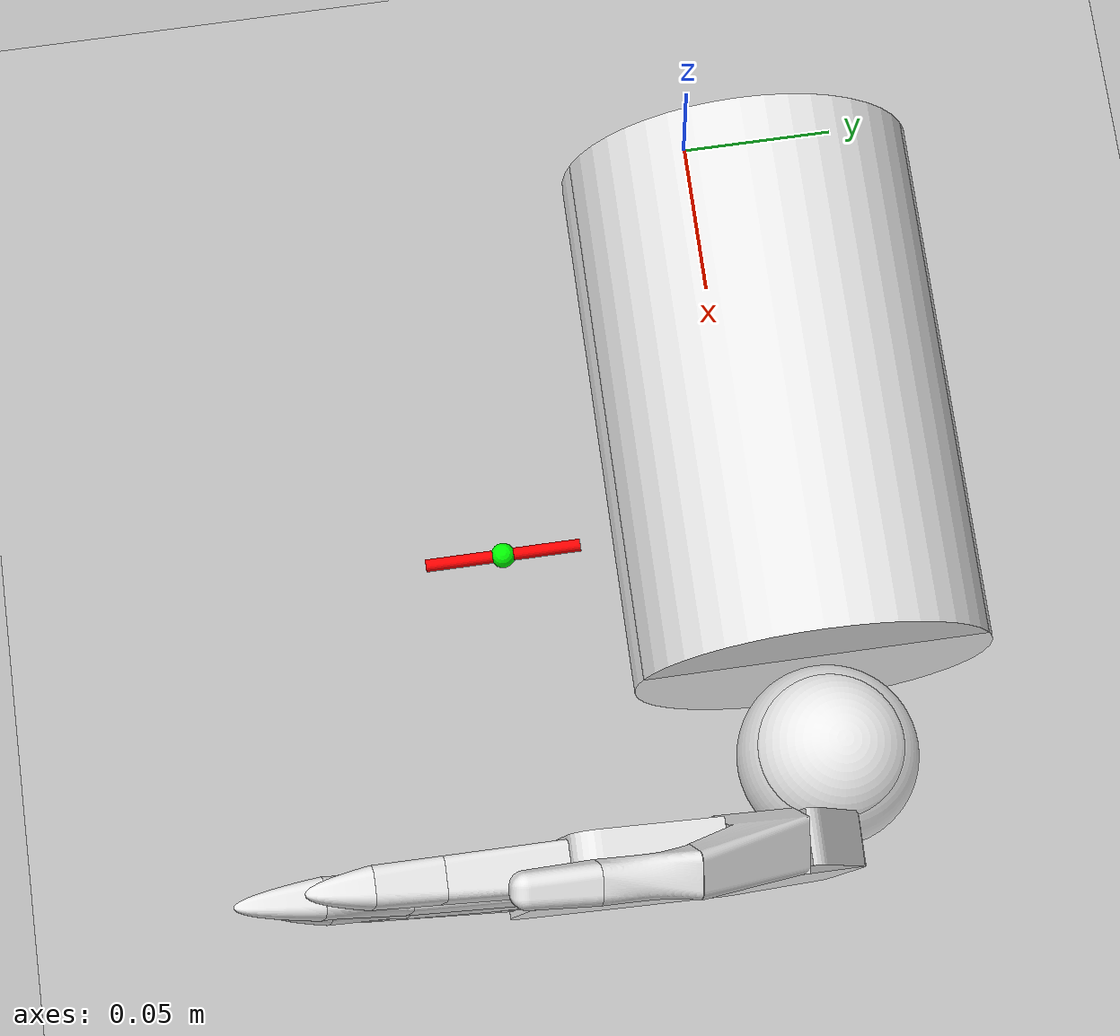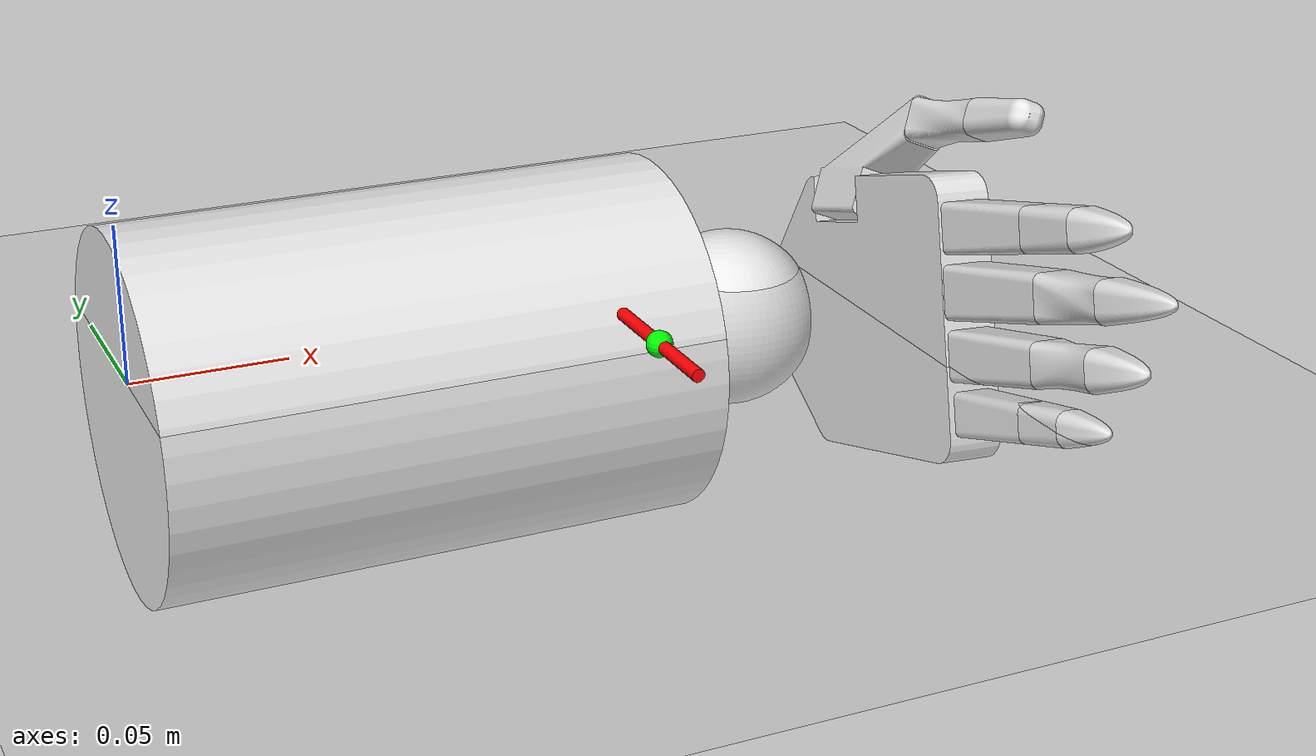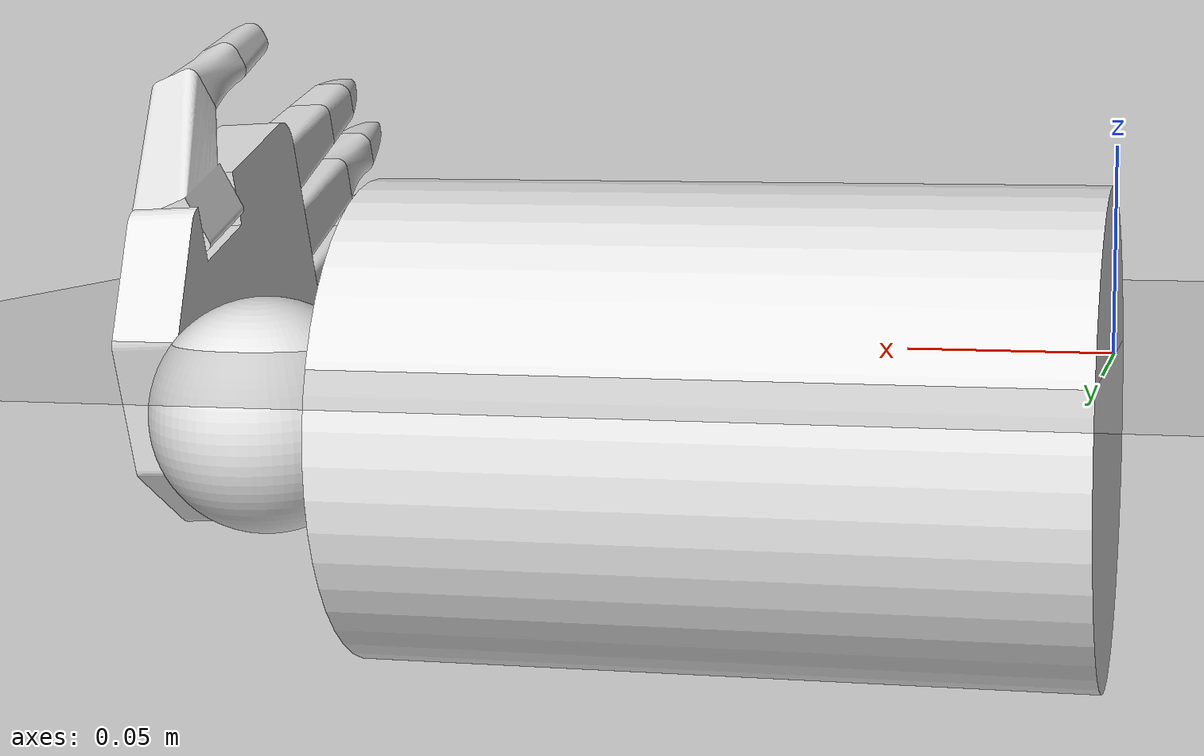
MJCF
<mujoco model="Hand_forearm">
  <compiler angle="radian" autolimits="true" meshdir="assets" />
  <option gravity="0 0 -9.81" />
  <default>
    <geom contype="2" conaffinity="1" />
  </default>
  <asset>
    <mesh name="fore_arm_1_0" file="fore_arm_1_0.stl" />
    <mesh name="wrist_1_1" file="wrist_1_1.stl" />
    <mesh name="human_hand_v3__Palm_1_2" file="human_hand_v3__Palm_1_2.stl" />
    <mesh name="fore_arm_1_3" file="fore_arm_1_3.stl" />
    <mesh name="wrist_1_4" file="wrist_1_4.stl" />
    <mesh name="human_hand_v3__Palm_1_5" file="human_hand_v3__Palm_1_5.stl" />
    <mesh name="Thumb_finger__Thumb_Base_1_6" file="Thumb_finger__Thumb_Base_1_6.stl" />
    <mesh name="Thumb_finger__Thumb_Base_1_7" file="Thumb_finger__Thumb_Base_1_7.stl" />
    <mesh name="Thumb_finger__Thumb_Proximal_1_8" file="Thumb_finger__Thumb_Proximal_1_8.stl" />
    <mesh name="Thumb_finger__Thumb_Proximal_1_9" file="Thumb_finger__Thumb_Proximal_1_9.stl" />
    <mesh name="Thumb_finger__Thumb_Distal_v2_1_10" file="Thumb_finger__Thumb_Distal_v2_1_10.stl" />
    <mesh name="Thumb_finger__Thumb_Distal_v2_1_11" file="Thumb_finger__Thumb_Distal_v2_1_11.stl" />
    <mesh name="Middle_Finger__Middle_Proximal_5_12" file="Middle_Finger__Middle_Proximal_5_12.stl" />
    <mesh name="Middle_Finger__Middle_Proximal_5_13" file="Middle_Finger__Middle_Proximal_5_13.stl" />
    <mesh name="Middle_Finger__Middle_Middle_4_14" file="Middle_Finger__Middle_Middle_4_14.stl" />
    <mesh name="Middle_Finger__Middle_Middle_4_15" file="Middle_Finger__Middle_Middle_4_15.stl" />
    <mesh name="Middle_Finger__Middle_Distal_4_16" file="Middle_Finger__Middle_Distal_4_16.stl" />
    <mesh name="Middle_Finger__Middle_Distal_4_17" file="Middle_Finger__Middle_Distal_4_17.stl" />
    <mesh name="index_assem__Index_Proximal_1_18" file="index_assem__Index_Proximal_1_18.stl" />
    <mesh name="index_assem__Index_Proximal_1_19" file="index_assem__Index_Proximal_1_19.stl" />
    <mesh name="index_assem__Index_Middle_1_20" file="index_assem__Index_Middle_1_20.stl" />
    <mesh name="index_assem__Index_Middle_1_21" file="index_assem__Index_Middle_1_21.stl" />
    <mesh name="index_assem__Index_Distal_1_22" file="index_assem__Index_Distal_1_22.stl" />
    <mesh name="index_assem__Index_Distal_1_23" file="index_assem__Index_Distal_1_23.stl" />
    <mesh name="Pinky_finger__Pinky_Proximal_1_24" file="Pinky_finger__Pinky_Proximal_1_24.stl" />
    <mesh name="Pinky_finger__Pinky_Proximal_1_25" file="Pinky_finger__Pinky_Proximal_1_25.stl" />
    <mesh name="Pinky_finger__Pinky_Middle_1_26" file="Pinky_finger__Pinky_Middle_1_26.stl" />
    <mesh name="Pinky_finger__Pinky_Middle_1_27" file="Pinky_finger__Pinky_Middle_1_27.stl" />
    <mesh name="Pinky_finger__Pinky_Distal_1_28" file="Pinky_finger__Pinky_Distal_1_28.stl" />
    <mesh name="Pinky_finger__Pinky_Distal_1_29" file="Pinky_finger__Pinky_Distal_1_29.stl" />
    <mesh name="Ring_finger__Ring_Proximal_1_30" file="Ring_finger__Ring_Proximal_1_30.stl" />
    <mesh name="Ring_finger__Ring_Proximal_1_31" file="Ring_finger__Ring_Proximal_1_31.stl" />
    <mesh name="Ring_finger__Ring_Middle_1_32" file="Ring_finger__Ring_Middle_1_32.stl" />
    <mesh name="Ring_finger__Ring_Middle_1_33" file="Ring_finger__Ring_Middle_1_33.stl" />
    <mesh name="Ring_finger__Ring_Distal_1_34" file="Ring_finger__Ring_Distal_1_34.stl" />
    <mesh name="Ring_finger__Ring_Distal_1_35" file="Ring_finger__Ring_Distal_1_35.stl" />
  </asset>
  <worldbody>
    <light pos="0 0 3" dir="0 0 -1" directional="true" />
    <geom name="ground" type="plane" size="5 5 0.1" contype="1" conaffinity="1" rgba="0.8 0.8 0.8 1" />
    <body name="base_link" pos="0 0 0">
      <inertial pos="0.105525177 0.0139732161 -0.017643717" mass="2.295572" diaginertia="0.0041793389 0.0120098631 0.0123199477" quat="0.988961157 -0.129704892 -0.0102235606 -0.0709080342" />
      <geom pos="0 0 0" quat="1 0 0 0" group="2" contype="0" conaffinity="0" type="mesh" mesh="fore_arm_1_0" rgba="0.894117647 0.894117647 0.894117647 1" name="base_link_visual0" />
      <geom pos="0 0 0" quat="1 0 0 0" group="2" contype="0" conaffinity="0" type="mesh" mesh="wrist_1_1" rgba="0.894117647 0.894117647 0.894117647 1" name="base_link_visual1" />
      <geom pos="0 0 0" quat="1 0 0 0" group="2" contype="0" conaffinity="0" type="mesh" mesh="human_hand_v3__Palm_1_2" rgba="0.894117647 0.894117647 0.894117647 1" name="base_link_visual2" />
      <geom pos="0 0 0" quat="1 0 0 0" group="3" type="mesh" mesh="fore_arm_1_3" rgba="0.4 0.4 0.4 1" name="base_link_collision0" />
      <geom pos="0 0 0" quat="1 0 0 0" group="3" type="mesh" mesh="wrist_1_4" rgba="0.4 0.4 0.4 1" name="base_link_collision1" />
      <geom pos="0 0 0" quat="1 0 0 0" group="3" type="mesh" mesh="human_hand_v3__Palm_1_5" rgba="0.4 0.4 0.4 1" name="base_link_collision2" />
      <site name="wrist_zero" pos="0.137372784 -0.0793053366 0.0205328921" type="sphere" size="0.004" rgba="0 1 0 1" />
      <site name="wrist_axis" pos="0.137372784 -0.0793053366 0.0205328921" type="cylinder" size="0.002 0.025"
            zaxis="0 1 0" rgba="1 0 0 1" />
      <body name="human_hand_v3_2__Thumb_finger_1__Thumb_Base_1" pos="0.248668957 0.00555147208 0.0397444398" quat="0.707105483 -1.29847569e-06 -1.29872752e-06 -0.70710808">
        <joint name="human_hand_v3_2__Palm_1__human_hand_v3_2__Thumb_finger_1__Thumb_Base_1" pos="0 0 0" axis="0 0 1" type="hinge" range="-3.14159 3.14159" damping="3.18471338" />
        <inertial pos="0.0218974991 -0.00306463948 -0.00115935533" mass="0.0146302" diaginertia="8.05767783e-07 3.18179553e-06 3.27284669e-06" quat="0.809428233 0.555708661 0.0570048579 -0.181009019" />
        <geom pos="0 0 0" quat="1 0 0 0" group="2" contype="0" conaffinity="0" type="mesh" mesh="Thumb_finger__Thumb_Base_1_6" rgba="0.894117647 0.894117647 0.894117647 1" name="human_hand_v3_2__Thumb_finger_1__Thumb_Base_1_visual0" />
        <geom pos="0 0 0" quat="1 0 0 0" group="3" type="mesh" mesh="Thumb_finger__Thumb_Base_1_7" rgba="0.4 0.4 0.4 1" name="human_hand_v3_2__Thumb_finger_1__Thumb_Base_1_collision0" />
        <body name="human_hand_v3_2__Thumb_finger_1__Thumb_Proximal_1" pos="0.0401273979 0.00345031264 0.0200720522" quat="1 0 0 0">
          <joint name="human_hand_v3_2__Thumb_finger_1__Thumb_Base_1__human_hand_v3_2__Thumb_finger_1__Thumb_Proximal_1" pos="0 0 0" axis="-0.27777332 0.39123503 0.87736944" type="hinge" range="-3.14159 3.14159" damping="3.18471338" />
          <inertial pos="0.0138440334 0.000128672747 0.00432561419" mass="0.00482838" diaginertia="1.2299212e-07 4.55144632e-07 4.64430248e-07" quat="0.967023708 -0.20516478 -0.148485968 -0.0269161264" />
          <geom pos="0 0 0" quat="1 0 0 0" group="2" contype="0" conaffinity="0" type="mesh" mesh="Thumb_finger__Thumb_Proximal_1_8" rgba="0.894117647 0.894117647 0.894117647 1" name="human_hand_v3_2__Thumb_finger_1__Thumb_Proximal_1_visual0" />
          <geom pos="0 0 0" quat="1 0 0 0" group="3" type="mesh" mesh="Thumb_finger__Thumb_Proximal_1_9" rgba="0.4 0.4 0.4 1" name="human_hand_v3_2__Thumb_finger_1__Thumb_Proximal_1_collision0" />
          <body name="human_hand_v3_2__Thumb_finger_1__Thumb_Distal_v2_1" pos="0.0295881081 0.000275005258 0.00924490287" quat="1 0 0 0">
            <joint name="human_hand_v3_2__Thumb_finger_1__Thumb_Proximal_1__human_hand_v3_2__Thumb_finger_1__Thumb_Distal_v2_1" pos="0 0 0" axis="0 0 1" type="hinge" range="-3.14159 3.14159" damping="3.18471338" />
            <inertial pos="0.0114792943 0.000106693714 0.0035867437" mass="0.00306267" diaginertia="5.86965015e-08 1.9395811e-07 1.98802088e-07" quat="0.968510695 -0.198026348 -0.148680594 -0.0258201649" />
            <geom pos="0 0 0" quat="1 0 0 0" group="2" contype="0" conaffinity="0" type="mesh" mesh="Thumb_finger__Thumb_Distal_v2_1_10" rgba="0.894117647 0.894117647 0.894117647 1" name="human_hand_v3_2__Thumb_finger_1__Thumb_Distal_v2_1_visual0" />
            <geom pos="0 0 0" quat="1 0 0 0" group="3" type="mesh" mesh="Thumb_finger__Thumb_Distal_v2_1_11" rgba="0.4 0.4 0.4 1" name="human_hand_v3_2__Thumb_finger_1__Thumb_Distal_v2_1_collision0" />
          </body>
        </body>
      </body>
      <body name="human_hand_v3_2__Middle_Finger_1__Middle_Proximal_5" pos="0.241372784 -0.0793053366 0.0205328921" quat="0.707105483 -1.29847569e-06 -1.29872752e-06 -0.70710808">
        <joint name="human_hand_v3_2__Palm_1__human_hand_v3_2__Middle_Finger_1__Middle_Proximal_5" pos="0 0 0" axis="0.29826476 -0.0528972999 -0.953016269" type="hinge" range="-3.14159 3.14159" damping="3.18471338" />
        <inertial pos="0.0205009996 0.00019055288 0.0064056048" mass="0.0112897" diaginertia="4.68645639e-07 2.12933064e-06 2.12933572e-06" quat="0.987242423 0.0507943269 -0.150408517 0.0122316604" />
        <geom pos="0 0 0" quat="1 0 0 0" group="2" contype="0" conaffinity="0" type="mesh" mesh="Middle_Finger__Middle_Proximal_5_12" rgba="0.894117647 0.894117647 0.894117647 1" name="human_hand_v3_2__Middle_Finger_1__Middle_Proximal_5_visual0" />
        <geom pos="0 0 0" quat="1 0 0 0" group="3" type="mesh" mesh="Middle_Finger__Middle_Proximal_5_13" rgba="0.4 0.4 0.4 1" name="human_hand_v3_2__Middle_Finger_1__Middle_Proximal_5_collision0" />
        <body name="human_hand_v3_2__Middle_Finger_1__Middle_Middle_4" pos="0.0429504795 0.000399201182 0.0134200203" quat="1 0 0 0">
          <joint name="human_hand_v3_2__Middle_Finger_1__Middle_Proximal_5__human_hand_v3_2__Middle_Finger_1__Middle_Middle_4" pos="0 0 0" axis="-0.00732084002 -0.998560553 0.0531340502" type="hinge" range="-3.14159 3.14159" damping="3.18471338" />
          <inertial pos="0.0120972882 0.000112438004 0.00377983783" mass="0.00456309" diaginertia="1.25674557e-07 3.48268512e-07 3.48269931e-07" quat="0.988044991 -0.0315377657 -0.15090513 -0.00032756301" />
          <geom pos="0 0 0" quat="1 0 0 0" group="2" contype="0" conaffinity="0" type="mesh" mesh="Middle_Finger__Middle_Middle_4_14" rgba="0.894117647 0.894117647 0.894117647 1" name="human_hand_v3_2__Middle_Finger_1__Middle_Middle_4_visual0" />
          <geom pos="0 0 0" quat="1 0 0 0" group="3" type="mesh" mesh="Middle_Finger__Middle_Middle_4_15" rgba="0.4 0.4 0.4 1" name="human_hand_v3_2__Middle_Finger_1__Middle_Middle_4_collision0" />
          <body name="human_hand_v3_2__Middle_Finger_1__Middle_Distal_4" pos="0.0257702877 0.000239520709 0.00805201218" quat="1 0 0 0">
            <joint name="human_hand_v3_2__Middle_Finger_1__Middle_Middle_4__human_hand_v3_2__Middle_Finger_1__Middle_Distal_4" pos="0 0 0" axis="0.00732084002 0.998560553 -0.0531340502" type="hinge" range="-3.14159 3.14159" damping="3.18471338" />
            <inertial pos="0.00858968737 7.99323513e-05 0.00268420822" mass="0.00209578" diaginertia="3.49257993e-08 1.02342833e-07 1.02343467e-07" quat="0.49393156 0.856306379 -0.0714771637 0.132898511" />
            <geom pos="0 0 0" quat="1 0 0 0" group="2" contype="0" conaffinity="0" type="mesh" mesh="Middle_Finger__Middle_Distal_4_16" rgba="0.894117647 0.894117647 0.894117647 1" name="human_hand_v3_2__Middle_Finger_1__Middle_Distal_4_visual0" />
            <geom pos="0 0 0" quat="1 0 0 0" group="3" type="mesh" mesh="Middle_Finger__Middle_Distal_4_17" rgba="0.4 0.4 0.4 1" name="human_hand_v3_2__Middle_Finger_1__Middle_Distal_4_collision0" />
          </body>
        </body>
      </body>
      <body name="human_hand_v3_2__index_assem_2__Index_Proximal_1" pos="0.242404303 -0.0734891093 0.039116688" quat="0.707105483 -1.29847569e-06 -1.29872752e-06 -0.70710808">
        <joint name="human_hand_v3_2__Palm_1__human_hand_v3_2__index_assem_2__Index_Proximal_1" pos="0 0 0" axis="0.29826476 -0.0528972999 -0.953016269" type="hinge" range="-3.14159 3.14159" damping="3.18471338" />
        <inertial pos="0.0177049315 0.000164564067 0.00553196471" mass="0.00857536" diaginertia="3.11850846e-07 1.23617272e-06 1.23617643e-06" quat="0.987713119 -0.0406248314 -0.150895576 -0.0017154448" />
        <geom pos="0 0 0" quat="1 0 0 0" group="2" contype="0" conaffinity="0" type="mesh" mesh="index_assem__Index_Proximal_1_18" rgba="0.894117647 0.894117647 0.894117647 1" name="human_hand_v3_2__index_assem_2__Index_Proximal_1_visual0" />
        <geom pos="0 0 0" quat="1 0 0 0" group="3" type="mesh" mesh="index_assem__Index_Proximal_1_19" rgba="0.4 0.4 0.4 1" name="human_hand_v3_2__index_assem_2__Index_Proximal_1_collision0" />
        <body name="human_hand_v3_2__index_assem_2__Index_Middle_1" pos="0.0372237489 0.000345974357 0.0116306843" quat="1 0 0 0">
          <joint name="human_hand_v3_2__index_assem_2__Index_Proximal_1__human_hand_v3_2__index_assem_2__Index_Middle_1" pos="0 0 0" axis="-0.29826476 0.0528972999 0.953016269" type="hinge" range="-3.14159 3.14159" damping="3.18471338" />
          <inertial pos="0.0101627499 9.44571939e-05 0.00317538504" mass="0.0037779" diaginertia="1.05472899e-07 2.04658801e-07 2.046593e-07" quat="0.987416705 -0.0472848659 -0.150880488 -0.00273319961" />
          <geom pos="0 0 0" quat="1 0 0 0" group="2" contype="0" conaffinity="0" type="mesh" mesh="index_assem__Index_Middle_1_20" rgba="0.894117647 0.894117647 0.894117647 1" name="human_hand_v3_2__index_assem_2__Index_Middle_1_visual0" />
          <geom pos="0 0 0" quat="1 0 0 0" group="3" type="mesh" mesh="index_assem__Index_Middle_1_21" rgba="0.4 0.4 0.4 1" name="human_hand_v3_2__index_assem_2__Index_Middle_1_collision0" />
          <body name="human_hand_v3_2__index_assem_2__Index_Distal_1" pos="0.0209980122 0.000195165022 0.00656089881" quat="1 0 0 0">
            <joint name="human_hand_v3_2__index_assem_2__Index_Middle_1__human_hand_v3_2__index_assem_2__Index_Distal_1" pos="0 0 0" axis="-0.29826476 0.0528972999 0.953016269" type="hinge" range="-3.14159 3.14159" damping="3.18471338" />
            <inertial pos="0.00636301403 5.88622601e-05 0.0019882563" mass="0.00155249" diaginertia="2.58713193e-08 4.74384938e-08 4.7439987e-08" quat="0.98779917 0.0384694241 -0.150550818 0.0103612081" />
            <geom pos="0 0 0" quat="1 0 0 0" group="2" contype="0" conaffinity="0" type="mesh" mesh="index_assem__Index_Distal_1_22" rgba="0.894117647 0.894117647 0.894117647 1" name="human_hand_v3_2__index_assem_2__Index_Distal_1_visual0" />
            <geom pos="0 0 0" quat="1 0 0 0" group="3" type="mesh" mesh="index_assem__Index_Distal_1_23" rgba="0.4 0.4 0.4 1" name="human_hand_v3_2__index_assem_2__Index_Distal_1_collision0" />
          </body>
        </body>
      </body>
      <body name="human_hand_v3_2__Pinky_finger_1__Pinky_Proximal_1" pos="0.239389095 -0.0904903889 -0.0152051769" quat="0.707105483 -1.29847569e-06 -1.29872752e-06 -0.70710808">
        <joint name="human_hand_v3_2__Palm_1__human_hand_v3_2__Pinky_finger_1__Pinky_Proximal_1" pos="0 0 0" axis="0 0 1" type="hinge" range="-3.14159 3.14159" damping="3.18471338" />
        <inertial pos="0.0143970815 0.00013381152 0.00449839061" mass="0.00524416" diaginertia="1.42027653e-07 5.14705317e-07 5.14709029e-07" quat="0.988168458 -0.0273987124 -0.150904991 0.000304527043" />
        <geom pos="0 0 0" quat="1 0 0 0" group="2" contype="0" conaffinity="0" type="mesh" mesh="Pinky_finger__Pinky_Proximal_1_24" rgba="0.894117647 0.894117647 0.894117647 1" name="human_hand_v3_2__Pinky_finger_1__Pinky_Proximal_1_visual0" />
        <geom pos="0 0 0" quat="1 0 0 0" group="3" type="mesh" mesh="Pinky_finger__Pinky_Proximal_1_25" rgba="0.4 0.4 0.4 1" name="human_hand_v3_2__Pinky_finger_1__Pinky_Proximal_1_collision0" />
        <body name="human_hand_v3_2__Pinky_finger_1__Pinky_Middle_1" pos="0.0305425632 0.000283876396 0.00954312554" quat="1 0 0 0">
          <joint name="human_hand_v3_2__Pinky_finger_1__Pinky_Proximal_1__human_hand_v3_2__Pinky_finger_1__Pinky_Middle_1" pos="0 0 0" axis="-0.00732084002 -0.998560553 0.0531340502" type="hinge" range="-3.14159 3.14159" damping="3.18471338" />
          <inertial pos="0.00824896004 7.66695522e-05 0.0025774151" mass="0.00219107" diaginertia="4.31909353e-08 8.04825322e-08 8.04829326e-08" quat="0.987716813 -0.0405344935 -0.150895848 -0.00170181303" />
          <geom pos="0 0 0" quat="1 0 0 0" group="2" contype="0" conaffinity="0" type="mesh" mesh="Pinky_finger__Pinky_Middle_1_26" rgba="0.894117647 0.894117647 0.894117647 1" name="human_hand_v3_2__Pinky_finger_1__Pinky_Middle_1_visual0" />
          <geom pos="0 0 0" quat="1 0 0 0" group="3" type="mesh" mesh="Pinky_finger__Pinky_Middle_1_27" rgba="0.4 0.4 0.4 1" name="human_hand_v3_2__Pinky_finger_1__Pinky_Middle_1_collision0" />
          <body name="human_hand_v3_2__Pinky_finger_1__Pinky_Distal_1" pos="0.0171801918 0.000159680473 0.00536800812" quat="1 0 0 0">
            <joint name="human_hand_v3_2__Pinky_finger_1__Pinky_Middle_1__human_hand_v3_2__Pinky_finger_1__Pinky_Distal_1" pos="0 0 0" axis="-0.00732084002 -0.998560553 0.0531340502" type="hinge" range="-3.14159 3.14159" damping="3.18471338" />
            <inertial pos="0.00572626912 5.3243237e-05 0.00178956477" mass="0.000965173" diaginertia="1.10480667e-08 2.28965246e-08 2.28980088e-08" quat="0.987850971 -0.0370901219 -0.150908585 -0.00117549651" />
            <geom pos="0 0 0" quat="1 0 0 0" group="2" contype="0" conaffinity="0" type="mesh" mesh="Pinky_finger__Pinky_Distal_1_28" rgba="0.894117647 0.894117647 0.894117647 1" name="human_hand_v3_2__Pinky_finger_1__Pinky_Distal_1_visual0" />
            <geom pos="0 0 0" quat="1 0 0 0" group="3" type="mesh" mesh="Pinky_finger__Pinky_Distal_1_29" rgba="0.4 0.4 0.4 1" name="human_hand_v3_2__Pinky_finger_1__Pinky_Distal_1_collision0" />
          </body>
        </body>
      </body>
      <body name="human_hand_v3_2__Ring_finger_1__Ring_Proximal_1" pos="0.240341266 -0.0851215638 0.00194909621" quat="0.707105483 -1.29847569e-06 -1.29872752e-06 -0.70710808">
        <joint name="human_hand_v3_2__Palm_1__human_hand_v3_2__Ring_finger_1__Ring_Proximal_1" pos="0 0 0" axis="0 0 1" type="hinge" range="-3.14159 3.14159" damping="3.18471338" />
        <inertial pos="0.018612877 0.000172996514 0.00581565553" mass="0.00901512" diaginertia="3.27843256e-07 1.41903587e-06 1.41903687e-06" quat="0.988419611 -0.0159470534 -0.150891181 0.00205306446" />
        <geom pos="0 0 0" quat="1 0 0 0" group="2" contype="0" conaffinity="0" type="mesh" mesh="Ring_finger__Ring_Proximal_1_30" rgba="0.894117647 0.894117647 0.894117647 1" name="human_hand_v3_2__Ring_finger_1__Ring_Proximal_1_visual0" />
        <geom pos="0 0 0" quat="1 0 0 0" group="3" type="mesh" mesh="Ring_finger__Ring_Proximal_1_31" rgba="0.4 0.4 0.4 1" name="human_hand_v3_2__Ring_finger_1__Ring_Proximal_1_collision0" />
        <body name="human_hand_v3_2__Ring_finger_1__Ring_Middle_1" pos="0.0391326591 0.000363716632 0.0122271296" quat="1 0 0 0">
          <joint name="human_hand_v3_2__Ring_finger_1__Ring_Proximal_1__human_hand_v3_2__Ring_finger_1__Ring_Middle_1" pos="0 0 0" axis="-0.00732084002 -0.998560553 0.0531340502" type="hinge" range="-3.14159 3.14159" damping="3.18471338" />
          <inertial pos="0.0115097173 0.000106976608 0.00359624949" mass="0.00389782" diaginertia="9.81453377e-08 2.59583693e-07 2.59583969e-07" quat="0.983231586 -0.102386469 -0.1504929 -0.0111600071" />
          <geom pos="0 0 0" quat="1 0 0 0" group="2" contype="0" conaffinity="0" type="mesh" mesh="Ring_finger__Ring_Middle_1_32" rgba="0.894117647 0.894117647 0.894117647 1" name="human_hand_v3_2__Ring_finger_1__Ring_Middle_1_visual0" />
          <geom pos="0 0 0" quat="1 0 0 0" group="3" type="mesh" mesh="Ring_finger__Ring_Middle_1_33" rgba="0.4 0.4 0.4 1" name="human_hand_v3_2__Ring_finger_1__Ring_Middle_1_collision0" />
          <body name="human_hand_v3_2__Ring_finger_1__Ring_Distal_1" pos="0.0238613775 0.000221778434 0.00745556683" quat="1 0 0 0">
            <joint name="human_hand_v3_2__Ring_finger_1__Ring_Middle_1__human_hand_v3_2__Ring_finger_1__Ring_Distal_1" pos="0 0 0" axis="-0.00732084002 -0.998560553 0.0531340502" type="hinge" range="-3.14159 3.14159" damping="3.18471338" />
            <inertial pos="0.00636307038 5.94192679e-05 0.00198805106" mass="0.00155249" diaginertia="2.58713138e-08 4.74384817e-08 4.74399045e-08" quat="0.987722906 0.0403933342 -0.150527908 0.0106390122" />
            <geom pos="0 0 0" quat="1 0 0 0" group="2" contype="0" conaffinity="0" type="mesh" mesh="Ring_finger__Ring_Distal_1_34" rgba="0.894117647 0.894117647 0.894117647 1" name="human_hand_v3_2__Ring_finger_1__Ring_Distal_1_visual0" />
            <geom pos="0 0 0" quat="1 0 0 0" group="3" type="mesh" mesh="Ring_finger__Ring_Distal_1_35" rgba="0.4 0.4 0.4 1" name="human_hand_v3_2__Ring_finger_1__Ring_Distal_1_collision0" />
          </body>
        </body>
      </body>
    </body>
  </worldbody>
  <actuator>
    <position name="human_hand_v3_2__Palm_1__human_hand_v3_2__Thumb_finger_1__Thumb_Base_1_act" joint="human_hand_v3_2__Palm_1__human_hand_v3_2__Thumb_finger_1__Thumb_Base_1" kp="50" ctrlrange="-3.14159 3.14159" forcerange="-10 10" />
    <position name="human_hand_v3_2__Thumb_finger_1__Thumb_Base_1__human_hand_v3_2__Thumb_finger_1__Thumb_Proximal_1_act" joint="human_hand_v3_2__Thumb_finger_1__Thumb_Base_1__human_hand_v3_2__Thumb_finger_1__Thumb_Proximal_1" kp="50" ctrlrange="-3.14159 3.14159" forcerange="-10 10" />
    <position name="human_hand_v3_2__Thumb_finger_1__Thumb_Proximal_1__human_hand_v3_2__Thumb_finger_1__Thumb_Distal_v2_1_act" joint="human_hand_v3_2__Thumb_finger_1__Thumb_Proximal_1__human_hand_v3_2__Thumb_finger_1__Thumb_Distal_v2_1" kp="50" ctrlrange="-3.14159 3.14159" forcerange="-10 10" />
    <position name="human_hand_v3_2__Palm_1__human_hand_v3_2__Middle_Finger_1__Middle_Proximal_5_act" joint="human_hand_v3_2__Palm_1__human_hand_v3_2__Middle_Finger_1__Middle_Proximal_5" kp="50" ctrlrange="-3.14159 3.14159" forcerange="-10 10" />
    <position name="human_hand_v3_2__Middle_Finger_1__Middle_Proximal_5__human_hand_v3_2__Middle_Finger_1__Middle_Middle_4_act" joint="human_hand_v3_2__Middle_Finger_1__Middle_Proximal_5__human_hand_v3_2__Middle_Finger_1__Middle_Middle_4" kp="50" ctrlrange="-3.14159 3.14159" forcerange="-10 10" />
    <position name="human_hand_v3_2__Middle_Finger_1__Middle_Middle_4__human_hand_v3_2__Middle_Finger_1__Middle_Distal_4_act" joint="human_hand_v3_2__Middle_Finger_1__Middle_Middle_4__human_hand_v3_2__Middle_Finger_1__Middle_Distal_4" kp="50" ctrlrange="-3.14159 3.14159" forcerange="-10 10" />
    <position name="human_hand_v3_2__Palm_1__human_hand_v3_2__index_assem_2__Index_Proximal_1_act" joint="human_hand_v3_2__Palm_1__human_hand_v3_2__index_assem_2__Index_Proximal_1" kp="50" ctrlrange="-3.14159 3.14159" forcerange="-10 10" />
    <position name="human_hand_v3_2__index_assem_2__Index_Proximal_1__human_hand_v3_2__index_assem_2__Index_Middle_1_act" joint="human_hand_v3_2__index_assem_2__Index_Proximal_1__human_hand_v3_2__index_assem_2__Index_Middle_1" kp="50" ctrlrange="-3.14159 3.14159" forcerange="-10 10" />
    <position name="human_hand_v3_2__index_assem_2__Index_Middle_1__human_hand_v3_2__index_assem_2__Index_Distal_1_act" joint="human_hand_v3_2__index_assem_2__Index_Middle_1__human_hand_v3_2__index_assem_2__Index_Distal_1" kp="50" ctrlrange="-3.14159 3.14159" forcerange="-10 10" />
    <position name="human_hand_v3_2__Palm_1__human_hand_v3_2__Pinky_finger_1__Pinky_Proximal_1_act" joint="human_hand_v3_2__Palm_1__human_hand_v3_2__Pinky_finger_1__Pinky_Proximal_1" kp="50" ctrlrange="-3.14159 3.14159" forcerange="-10 10" />
    <position name="human_hand_v3_2__Pinky_finger_1__Pinky_Proximal_1__human_hand_v3_2__Pinky_finger_1__Pinky_Middle_1_act" joint="human_hand_v3_2__Pinky_finger_1__Pinky_Proximal_1__human_hand_v3_2__Pinky_finger_1__Pinky_Middle_1" kp="50" ctrlrange="-3.14159 3.14159" forcerange="-10 10" />
    <position name="human_hand_v3_2__Pinky_finger_1__Pinky_Middle_1__human_hand_v3_2__Pinky_finger_1__Pinky_Distal_1_act" joint="human_hand_v3_2__Pinky_finger_1__Pinky_Middle_1__human_hand_v3_2__Pinky_finger_1__Pinky_Distal_1" kp="50" ctrlrange="-3.14159 3.14159" forcerange="-10 10" />
    <position name="human_hand_v3_2__Palm_1__human_hand_v3_2__Ring_finger_1__Ring_Proximal_1_act" joint="human_hand_v3_2__Palm_1__human_hand_v3_2__Ring_finger_1__Ring_Proximal_1" kp="50" ctrlrange="-3.14159 3.14159" forcerange="-10 10" />
    <position name="human_hand_v3_2__Ring_finger_1__Ring_Proximal_1__human_hand_v3_2__Ring_finger_1__Ring_Middle_1_act" joint="human_hand_v3_2__Ring_finger_1__Ring_Proximal_1__human_hand_v3_2__Ring_finger_1__Ring_Middle_1" kp="50" ctrlrange="-3.14159 3.14159" forcerange="-10 10" />
    <position name="human_hand_v3_2__Ring_finger_1__Ring_Middle_1__human_hand_v3_2__Ring_finger_1__Ring_Distal_1_act" joint="human_hand_v3_2__Ring_finger_1__Ring_Middle_1__human_hand_v3_2__Ring_finger_1__Ring_Distal_1" kp="50" ctrlrange="-3.14159 3.14159" forcerange="-10 10" />
  </actuator>
  <keyframe>
    <key name="home" qpos="0 0 0 0 0 0 0 0 0 0 0 0 0 0 0" />
  </keyframe>
</mujoco>
